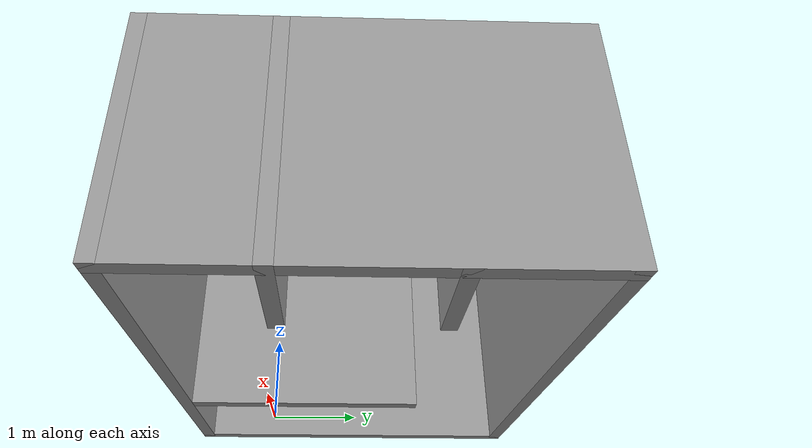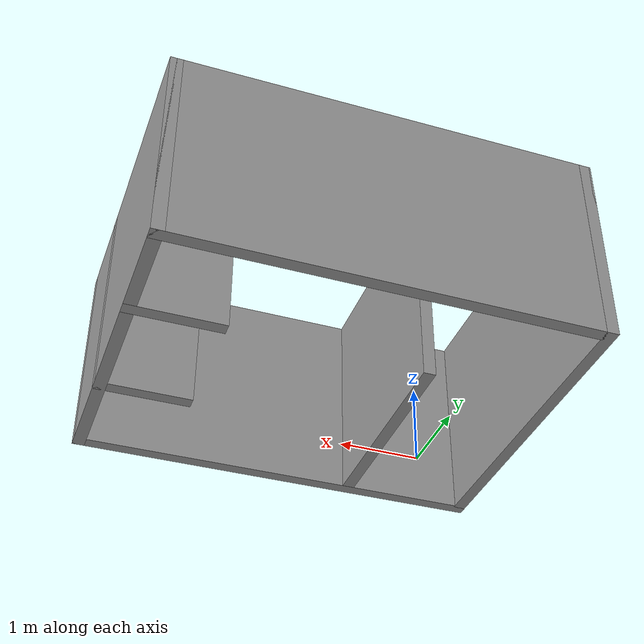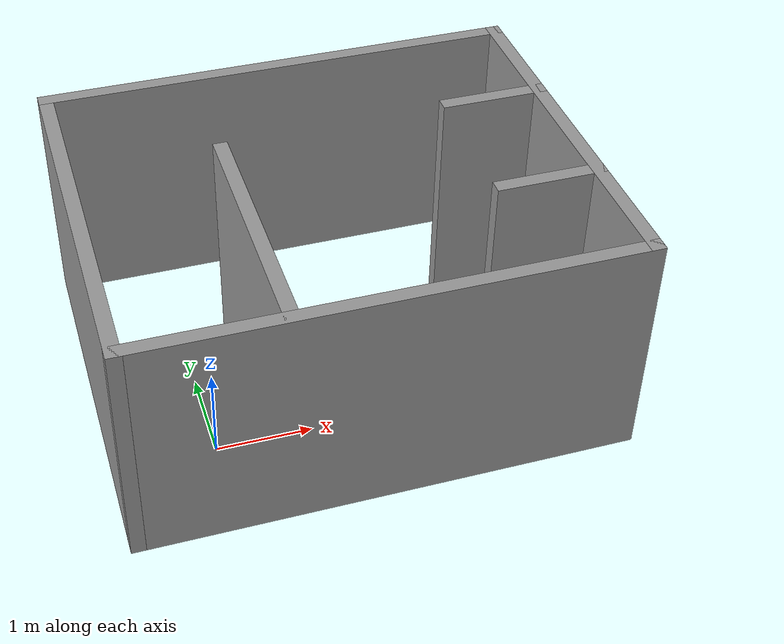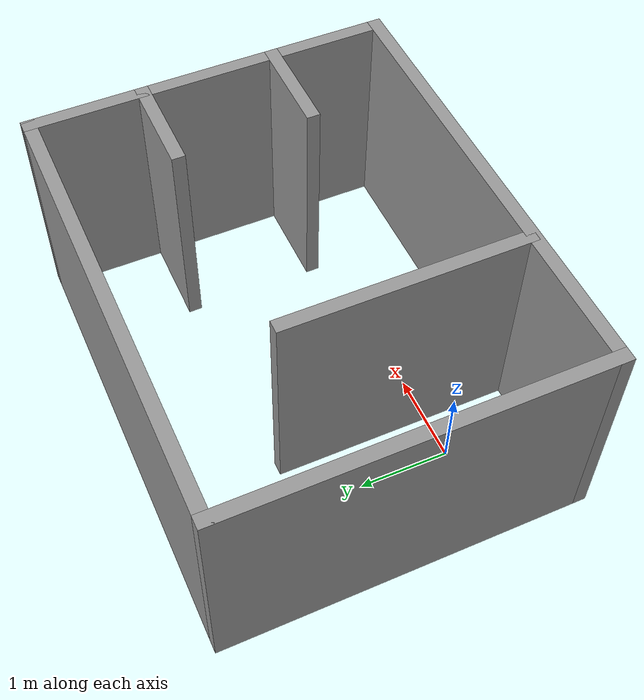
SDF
<?xml version='1.0'?>
<sdf version='1.7'>
  <model name='course2'>
    <pose>1.5 1 0 0 -0 0</pose>
    <link name='Wall_0'>
      <collision name='Wall_0_Collision'>
        <geometry>
          <box>
            <size>4.15 0.15 2.5</size>
          </box>
        </geometry>
        <pose>0 0 1.25 0 -0 0</pose>
      </collision>
      <visual name='Wall_0_Visual'>
        <pose>0 0 1.25 0 -0 0</pose>
        <geometry>
          <box>
            <size>4.15 0.15 2.5</size>
          </box>
        </geometry>
        <material>
          <script>
            <uri>file://media/materials/scripts/gazebo.material</uri>
            <name>Gazebo/Grey</name>
          </script>
          <ambient>1 1 1 1</ambient>
        </material>
        <meta>
          <layer>0</layer>
        </meta>
      </visual>
      <pose>-2.5 0 0 0 -0 1.5708</pose>
    </link>
    <link name='Wall_1'>
      <collision name='Wall_1_Collision'>
        <geometry>
          <box>
            <size>5.15 0.15 2.5</size>
          </box>
        </geometry>
        <pose>0 0 1.25 0 -0 0</pose>
      </collision>
      <visual name='Wall_1_Visual'>
        <pose>0 0 1.25 0 -0 0</pose>
        <geometry>
          <box>
            <size>5.15 0.15 2.5</size>
          </box>
        </geometry>
        <material>
          <script>
            <uri>file://media/materials/scripts/gazebo.material</uri>
            <name>Gazebo/Grey</name>
          </script>
          <ambient>1 1 1 1</ambient>
        </material>
        <meta>
          <layer>0</layer>
        </meta>
      </visual>
      <pose>0 2 0 0 -0 0</pose>
    </link>
    <link name='Wall_13'>
      <collision name='Wall_13_Collision'>
        <geometry>
          <box>
            <size>1.15 0.15 2.5</size>
          </box>
        </geometry>
        <pose>0 0 1.25 0 -0 0</pose>
      </collision>
      <visual name='Wall_13_Visual'>
        <pose>0 0 1.25 0 -0 0</pose>
        <geometry>
          <box>
            <size>1.15 0.15 2.5</size>
          </box>
        </geometry>
        <material>
          <script>
            <uri>file://media/materials/scripts/gazebo.material</uri>
            <name>Gazebo/Grey</name>
          </script>
          <ambient>1 1 1 1</ambient>
        </material>
        <meta>
          <layer>0</layer>
        </meta>
      </visual>
      <pose>2 0.75 0 0 -0 3.14159</pose>
    </link>
    <link name='Wall_16'>
      <collision name='Wall_16_Collision'>
        <geometry>
          <box>
            <size>1.15 0.15 2.5</size>
          </box>
        </geometry>
        <pose>0 0 1.25 0 -0 0</pose>
      </collision>
      <visual name='Wall_16_Visual'>
        <pose>0 0 1.25 0 -0 0</pose>
        <geometry>
          <box>
            <size>1.15 0.15 2.5</size>
          </box>
        </geometry>
        <material>
          <script>
            <uri>file://media/materials/scripts/gazebo.material</uri>
            <name>Gazebo/Grey</name>
          </script>
          <ambient>1 1 1 1</ambient>
        </material>
        <meta>
          <layer>0</layer>
        </meta>
      </visual>
      <pose>2 -0.75 0 0 -0 3.14159</pose>
    </link>
    <link name='Wall_2'>
      <collision name='Wall_2_Collision'>
        <geometry>
          <box>
            <size>4.15 0.15 2.5</size>
          </box>
        </geometry>
        <pose>0 0 1.25 0 -0 0</pose>
      </collision>
      <visual name='Wall_2_Visual'>
        <pose>0 0 1.25 0 -0 0</pose>
        <geometry>
          <box>
            <size>4.15 0.15 2.5</size>
          </box>
        </geometry>
        <material>
          <script>
            <uri>file://media/materials/scripts/gazebo.material</uri>
            <name>Gazebo/Grey</name>
          </script>
          <ambient>1 1 1 1</ambient>
        </material>
        <meta>
          <layer>0</layer>
        </meta>
      </visual>
      <pose>2.5 0 0 0 -0 -1.5708</pose>
    </link>
    <link name='Wall_3'>
      <collision name='Wall_3_Collision'>
        <geometry>
          <box>
            <size>5.15 0.15 2.5</size>
          </box>
        </geometry>
        <pose>0 0 1.25 0 -0 0</pose>
      </collision>
      <visual name='Wall_3_Visual'>
        <pose>0 0 1.25 0 -0 0</pose>
        <geometry>
          <box>
            <size>5.15 0.15 2.5</size>
          </box>
        </geometry>
        <material>
          <script>
            <uri>file://media/materials/scripts/gazebo.material</uri>
            <name>Gazebo/Grey</name>
          </script>
          <ambient>1 1 1 1</ambient>
        </material>
        <meta>
          <layer>0</layer>
        </meta>
      </visual>
      <pose>0 -2 0 0 -0 3.14159</pose>
    </link>
    <link name='Wall_6'>
      <collision name='Wall_6_Collision'>
        <geometry>
          <box>
            <size>2.75 0.15 2.5</size>
          </box>
        </geometry>
        <pose>0 0 1.25 0 -0 0</pose>
      </collision>
      <visual name='Wall_6_Visual'>
        <pose>0 0 1.25 0 -0 0</pose>
        <geometry>
          <box>
            <size>2.75 0.15 2.5</size>
          </box>
        </geometry>
        <material>
          <script>
            <uri>file://media/materials/scripts/gazebo.material</uri>
            <name>Gazebo/Grey</name>
          </script>
          <ambient>1 1 1 1</ambient>
        </material>
        <meta>
          <layer>0</layer>
        </meta>
      </visual>
      <pose>-0.939251 -0.653086 0 0 -0 1.5708</pose>
    </link>
    <static>1</static>
  </model>
</sdf>
